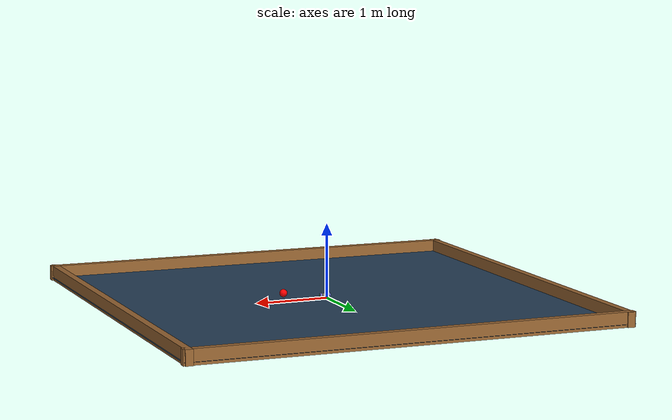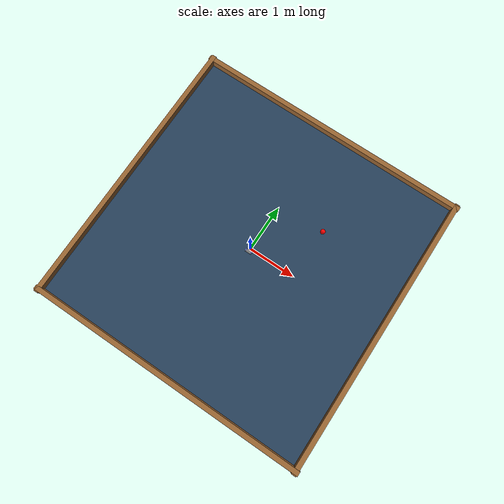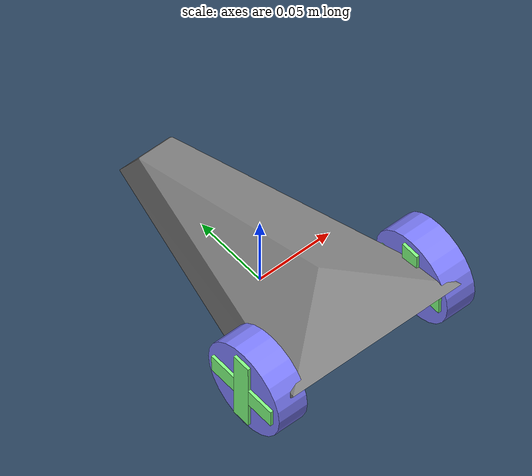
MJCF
<mujoco>

  <!-- Assets - textures and designs -->
  <asset>
    <texture name="grid" type="2d" builtin="checker" width="512" height="512" rgb1=".1 .2 .3" rgb2=".2 .3 .4"/>
    <material name="grid" texture="grid" texrepeat="1 1" texuniform="true" reflectance=".2"/>

    <material name="wooden" rgba="0.6 0.4 0.2 1" shininess="0.6" specular="0.2" reflectance="0.5"/>

    <mesh name="chasis" scale=".01 .006 .0015"
      vertex=" 9   2   0
              -10  10  10
               9  -2   0
               10  3  -10
               10 -3  -10
              -8   10 -10
              -10 -10  10
              -8  -10 -10
              -5   0   20"/>
  </asset>

  <default>
    <default class="wheel">
      <geom type="cylinder" size=".03 .01" rgba=".5 .5 1 1"/>
    </default>
    <default class="decor">
      <site type="box" rgba=".5 1 .5 1"/>
    </default>
  </default>

  <worldbody>

    <!-- Ground plane & the walls -->
    <geom type="plane" size="3 3 .01" material="grid" friction="0.0"/>
    <geom type="box" size="3 0.05 0.1" pos="0 2.93 0.05" material="wooden"/>
    <geom type="box" size="3 0.05 0.1" pos="0 -2.93 0.05" material="wooden"/>
    <geom type="box" size="0.05 3 0.1" pos="2.93 0 0.05" material="wooden"/>
    <geom type="box" size="0.05 3 0.1" pos="-2.93 0 0.05" material="wooden"/>

    <!-- Greg Himself -->
    <body name="car" pos="0 0 .03" quat="0.7 0 0 0.7">
      <!-- Sensors for Greg (they don't for some reason) -->

      <!-- The Rest of Greg -->

      <freejoint/>
      <light name="top light" pos="0 0 2" mode="trackcom" diffuse=".4 .4 .4"/>
      <geom name="chasis" type="mesh" mesh="chasis"/>
      <geom name="front wheel" pos=".08 0 -.015" type="sphere" size=".015" condim="1" priority="1" friction="2.0"/>
      <light name="front light" pos=".1 0 .02" dir="2 0 -1" diffuse="1 1 1"/>

      <body name="left wheel" pos="-.07 .06 0" zaxis="0 1 0">
        <joint name="left"/>
        <geom class="wheel" friction="2.0"/>
        <site class="decor" size=".006 .025 .012"/>
        <site class="decor" size=".025 .006 .012"/>
      </body>

      <body name="right wheel" pos="-.07 -.06 0" zaxis="0 1 0">
        <joint name="right"/>
        <geom class="wheel" friction="2.0"/>
        <site class="decor" size=".006 .025 .012"/>
        <site class="decor" size=".025 .006 .012"/>
      </body>

    </body>

    <!-- Greg's Goal -->
    <body name="goal" pos="1.0 1.0 0.32">
      <joint name="goal" type="hinge"/>
      <geom type="sphere" size="0.05" rgba="1 0 0 1" group="0" solref="0.001 1" solimp="0.01 0.99"/>
    </body>

  </worldbody>

  <!-- Tendons and Actuators for moving Greg -->
  <tendon>
    <fixed name="forward">
      <joint joint="left" coef=".5"/>
      <joint joint="right" coef=".5"/>
    </fixed>
    <fixed name="turn">
      <joint joint="left" coef="-.5"/>
      <joint joint="right" coef=".5"/>
    </fixed>
  </tendon>

  <actuator>
    <motor name="forward" tendon="forward" ctrlrange="-1 1"/>
    <motor name="turn" tendon="turn" ctrlrange="-1 1"/>
  </actuator>

</mujoco>
